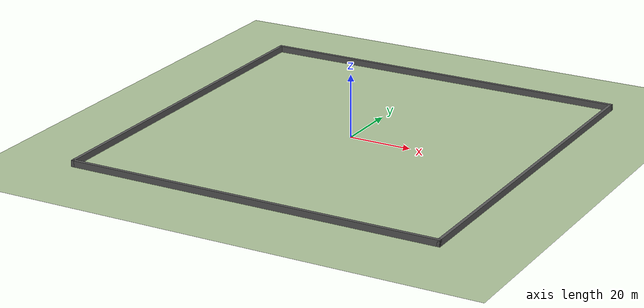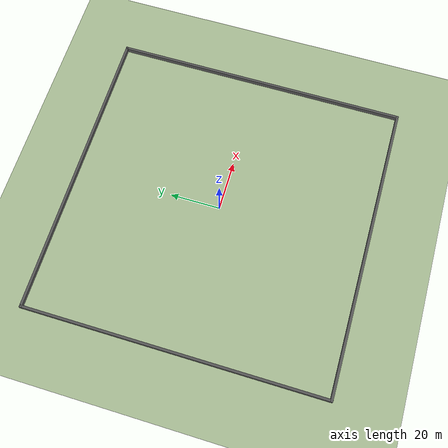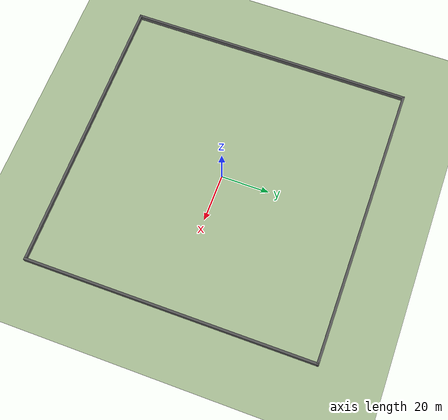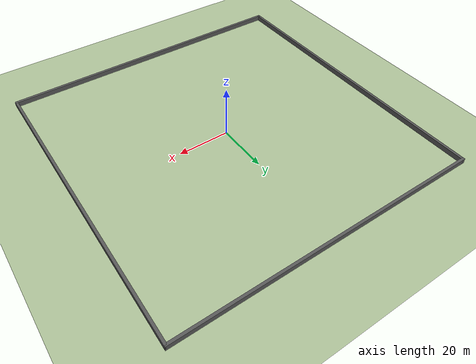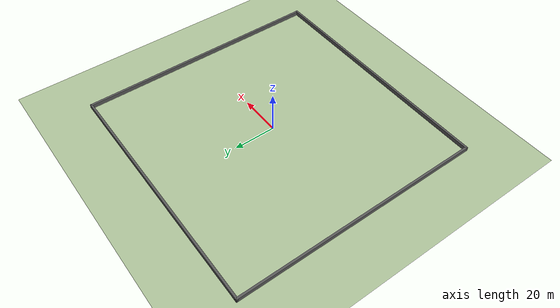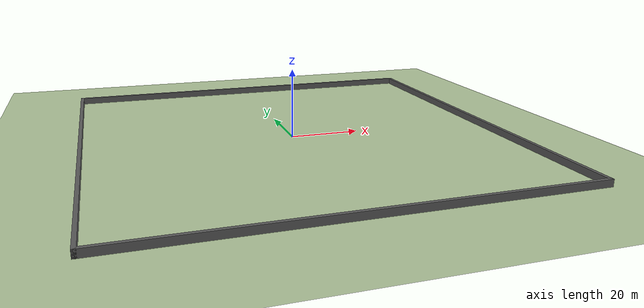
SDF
<?xml version='1.0' encoding='ASCII'?>
<sdf version='1.4'>
  <world name='open_field'>
    <physics type='ode'>
      <max_step_size>0.003</max_step_size>
      <real_time_factor>1.0</real_time_factor>
      <real_time_update_rate>1000</real_time_update_rate>
      <gravity>0 0 -9.8</gravity>
    </physics>
    <plugin name='gz::sim::systems::Physics' filename='libgz-sim-physics-system.so'/>
    <plugin name='gz::sim::systems::UserCommands' filename='libgz-sim-user-commands-system.so'/>
    <plugin name='gz::sim::systems::SceneBroadcaster' filename='libgz-sim-scene-broadcaster-system.so'/>
    <plugin name='gz::sim::systems::Sensors' filename='libgz-sim-sensors-system.so'>
      <render_engine>ogre2</render_engine>
    </plugin>
    <plugin name='gz::sim::systems::Imu' filename='libgz-sim-imu-system.so'/>
    <plugin name='gz::sim::systems::NavSat' filename='libgz-sim-navsat-system.so'/>

    <scene>
      <ambient>1 1 1 1</ambient>
      <background>0.3 0.7 0.9 1</background>
      <shadows>1</shadows>
      <grid>true</grid>
      <sky>
        <clouds>
          <speed>8</speed>
        </clouds>
      </sky>
    </scene>

    <light name='sun' type='directional'>
      <cast_shadows>1</cast_shadows>
      <pose>0 0 10 0 -0 0</pose>
      <diffuse>1.0 1.0 1.0 1</diffuse>
      <specular>0.2 0.2 0.2 1</specular>
      <attenuation>
        <range>1000</range>
        <constant>0.9</constant>
        <linear>0.01</linear>
        <quadratic>0.001</quadratic>
      </attenuation>
      <direction>-0.5 0.5 -1.0</direction>
    </light>

    <spherical_coordinates>
      <surface_model>EARTH_WGS84</surface_model>
      <latitude_deg>43.500720</latitude_deg>
      <longitude_deg>-80.546793</longitude_deg>
      <elevation>329</elevation>
      <heading_deg>0</heading_deg>
    </spherical_coordinates>

    <model name='ground'>
      <static>true</static>
      <pose>0 0 0 0 0 0</pose>
      <link name='ground_link'>
        <collision name='ground_collision'>
          <geometry>
            <plane>
              <normal>0 0 1</normal>
              <size>120 120</size>
            </plane>
          </geometry>
        </collision>
        <visual name='ground_visual'>
          <geometry>
            <plane>
              <normal>0 0 1</normal>
              <size>120 120</size>
            </plane>
          </geometry>
          <material>
            <ambient>0.68 0.76 0.60 1</ambient>
            <diffuse>0.68 0.76 0.60 1</diffuse>
            <specular>0.05 0.05 0.05 1</specular>
          </material>
        </visual>
      </link>
    </model>

    <model name='north_wall'>
      <static>true</static>
      <pose>0 59.5 1.0 0 0 0</pose>
      <link name='wall_link'>
        <collision name='wall_collision'>
          <geometry>
            <box>
              <size>120 1 2</size>
            </box>
          </geometry>
        </collision>
        <visual name='wall_visual'>
          <geometry>
            <box>
              <size>120 1 2</size>
            </box>
          </geometry>
          <material>
            <ambient>0.35 0.35 0.35 1</ambient>
            <diffuse>0.35 0.35 0.35 1</diffuse>
          </material>
        </visual>
      </link>
    </model>

    <model name='south_wall'>
      <static>true</static>
      <pose>0 -59.5 1.0 0 0 0</pose>
      <link name='wall_link'>
        <collision name='wall_collision'>
          <geometry>
            <box>
              <size>120 1 2</size>
            </box>
          </geometry>
        </collision>
        <visual name='wall_visual'>
          <geometry>
            <box>
              <size>120 1 2</size>
            </box>
          </geometry>
          <material>
            <ambient>0.35 0.35 0.35 1</ambient>
            <diffuse>0.35 0.35 0.35 1</diffuse>
          </material>
        </visual>
      </link>
    </model>

    <model name='east_wall'>
      <static>true</static>
      <pose>59.5 0 1.0 0 0 0</pose>
      <link name='wall_link'>
        <collision name='wall_collision'>
          <geometry>
            <box>
              <size>1 120 2</size>
            </box>
          </geometry>
        </collision>
        <visual name='wall_visual'>
          <geometry>
            <box>
              <size>1 120 2</size>
            </box>
          </geometry>
          <material>
            <ambient>0.35 0.35 0.35 1</ambient>
            <diffuse>0.35 0.35 0.35 1</diffuse>
          </material>
        </visual>
      </link>
    </model>

    <model name='west_wall'>
      <static>true</static>
      <pose>-59.5 0 1.0 0 0 0</pose>
      <link name='wall_link'>
        <collision name='wall_collision'>
          <geometry>
            <box>
              <size>1 120 2</size>
            </box>
          </geometry>
        </collision>
        <visual name='wall_visual'>
          <geometry>
            <box>
              <size>1 120 2</size>
            </box>
          </geometry>
          <material>
            <ambient>0.35 0.35 0.35 1</ambient>
            <diffuse>0.35 0.35 0.35 1</diffuse>
          </material>
        </visual>
      </link>
    </model>
  </world>
</sdf>
